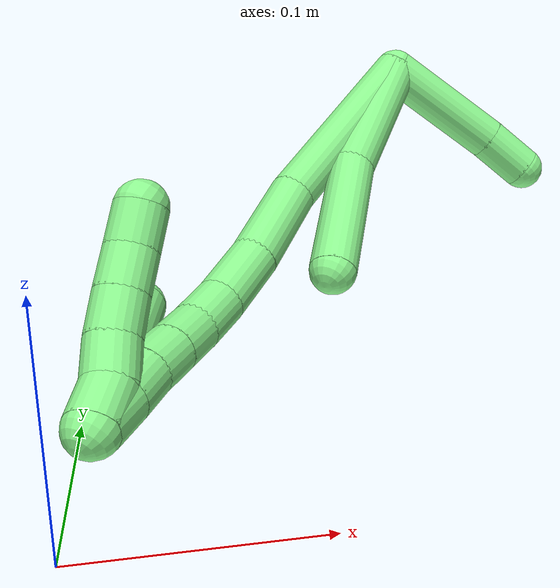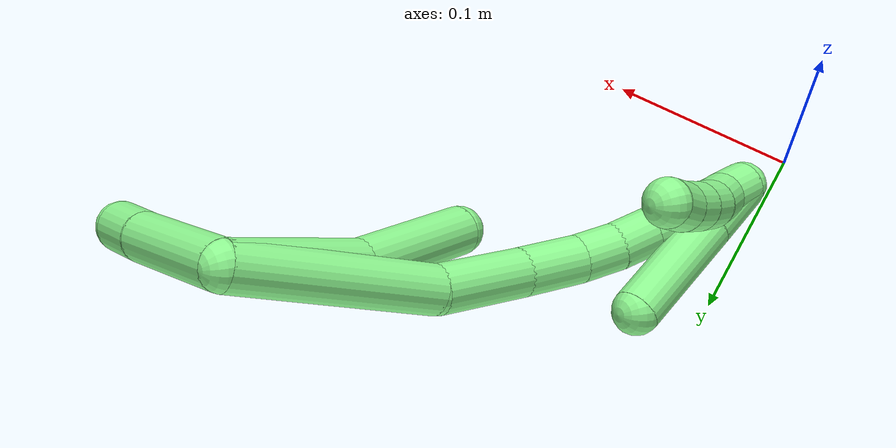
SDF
<sdf version="1.7">
 <world name="default">
  <model name="13">
   <static>0</static>
   <link name="13">
    <collision name="collision-cylinder-e_1_2_8">
     <pose>-0.000254 0.007396 -0.037537 -2.94705 -0.006627 0.067888</pose>
     <geometry><cylinder><radius>0.0125</radius><length>0.076518</length></cylinder></geometry>
     <surface>
      <friction><ode><mu>1.16</mu><mu2>1.16</mu2><slip1>0</slip1><slip2>0</slip2></ode></friction>
      <contact><ode><kp>1e+06</kp><kd>1</kd><max_vel>0</max_vel><min_depth>0.001</min_depth></ode></contact>
     </surface>
    </collision>
    <visual name="visual-cylinder-e_1_2_8">
     <pose>-0.000254 0.007396 -0.037537 -2.94705 -0.006627 0.067888</pose>
     <geometry><cylinder><radius>0.0125</radius><length>0.076518</length></cylinder></geometry>
     <material><ambient>0.564706 0.984314 0.572549 1</ambient></material>
    </visual>
    <collision name="collision-cylinder-e_2_8_6">
     <pose>0.006979 0.017279 -0.110957 -3.0724 0.205181 -2.493</pose>
     <geometry><cylinder><radius>0.0125</radius><length>0.073482</length></cylinder></geometry>
     <surface>
      <friction><ode><mu>1.16</mu><mu2>1.16</mu2><slip1>0</slip1><slip2>0</slip2></ode></friction>
      <contact><ode><kp>1e+06</kp><kd>1</kd><max_vel>0</max_vel><min_depth>0.001</min_depth></ode></contact>
     </surface>
    </collision>
    <visual name="visual-cylinder-e_2_8_6">
     <pose>0.006979 0.017279 -0.110957 -3.0724 0.205181 -2.493</pose>
     <geometry><cylinder><radius>0.0125</radius><length>0.073482</length></cylinder></geometry>
     <material><ambient>0.564706 0.984314 0.572549 1</ambient></material>
    </visual>
    <collision name="collision-cylinder-e_1_2_9">
     <pose>0.031462 0.01659 0.000521 -1.53943 1.08535 -1.05781</pose>
     <geometry><cylinder><radius>0.0125</radius><length>0.071144</length></cylinder></geometry>
     <surface>
      <friction><ode><mu>1.16</mu><mu2>1.16</mu2><slip1>0</slip1><slip2>0</slip2></ode></friction>
      <contact><ode><kp>1e+06</kp><kd>1</kd><max_vel>0</max_vel><min_depth>0.001</min_depth></ode></contact>
     </surface>
    </collision>
    <visual name="visual-cylinder-e_1_2_9">
     <pose>0.031462 0.01659 0.000521 -1.53943 1.08535 -1.05781</pose>
     <geometry><cylinder><radius>0.0125</radius><length>0.071144</length></cylinder></geometry>
     <material><ambient>0.564706 0.984314 0.572549 1</ambient></material>
    </visual>
    <collision name="collision-cylinder-e_2_9_5">
     <pose>0.07562 0.039958 2.2e-05 -1.72001 1.07573 -1.21191</pose>
     <geometry><cylinder><radius>0.0125</radius><length>0.028856</length></cylinder></geometry>
     <surface>
      <friction><ode><mu>1.16</mu><mu2>1.16</mu2><slip1>0</slip1><slip2>0</slip2></ode></friction>
      <contact><ode><kp>1e+06</kp><kd>1</kd><max_vel>0</max_vel><min_depth>0.001</min_depth></ode></contact>
     </surface>
    </collision>
    <visual name="visual-cylinder-e_2_9_5">
     <pose>0.07562 0.039958 2.2e-05 -1.72001 1.07573 -1.21191</pose>
     <geometry><cylinder><radius>0.0125</radius><length>0.028856</length></cylinder></geometry>
     <material><ambient>0.564706 0.984314 0.572549 1</ambient></material>
    </visual>
    <collision name="collision-cylinder-e_1_2_10">
     <pose>-0.012145 0.008829 -0.052631 -2.9754 -0.223764 1.86572</pose>
     <geometry><cylinder><radius>0.0125</radius><length>0.109462</length></cylinder></geometry>
     <surface>
      <friction><ode><mu>1.16</mu><mu2>1.16</mu2><slip1>0</slip1><slip2>0</slip2></ode></friction>
      <contact><ode><kp>1e+06</kp><kd>1</kd><max_vel>0</max_vel><min_depth>0.001</min_depth></ode></contact>
     </surface>
    </collision>
    <visual name="visual-cylinder-e_1_2_10">
     <pose>-0.012145 0.008829 -0.052631 -2.9754 -0.223764 1.86572</pose>
     <geometry><cylinder><radius>0.0125</radius><length>0.109462</length></cylinder></geometry>
     <material><ambient>0.564706 0.984314 0.572549 1</ambient></material>
    </visual>
    <collision name="collision-cylinder-e_2_10_11">
     <pose>-0.024762 0.017499 -0.130881 3.13542 -0.018452 -2.49619</pose>
     <geometry><cylinder><radius>0.0125</radius><length>0.051248</length></cylinder></geometry>
     <surface>
      <friction><ode><mu>1.16</mu><mu2>1.16</mu2><slip1>0</slip1><slip2>0</slip2></ode></friction>
      <contact><ode><kp>1e+06</kp><kd>1</kd><max_vel>0</max_vel><min_depth>0.001</min_depth></ode></contact>
     </surface>
    </collision>
    <visual name="visual-cylinder-e_2_10_11">
     <pose>-0.024762 0.017499 -0.130881 3.13542 -0.018452 -2.49619</pose>
     <geometry><cylinder><radius>0.0125</radius><length>0.051248</length></cylinder></geometry>
     <material><ambient>0.564706 0.984314 0.572549 1</ambient></material>
    </visual>
    <collision name="collision-cylinder-e_3_11_12">
     <pose>-0.026579 0.015617 -0.173611 3.04118 -0.077967 -1.32015</pose>
     <geometry><cylinder><radius>0.0125</radius><length>0.034498</length></cylinder></geometry>
     <surface>
      <friction><ode><mu>1.16</mu><mu2>1.16</mu2><slip1>0</slip1><slip2>0</slip2></ode></friction>
      <contact><ode><kp>1e+06</kp><kd>1</kd><max_vel>0</max_vel><min_depth>0.001</min_depth></ode></contact>
     </surface>
    </collision>
    <visual name="visual-cylinder-e_3_11_12">
     <pose>-0.026579 0.015617 -0.173611 3.04118 -0.077967 -1.32015</pose>
     <geometry><cylinder><radius>0.0125</radius><length>0.034498</length></cylinder></geometry>
     <material><ambient>0.564706 0.984314 0.572549 1</ambient></material>
    </visual>
    <collision name="collision-cylinder-e_4_12_13">
     <pose>-0.029022 0.011187 -0.20194 2.90487 -0.095017 -0.760695</pose>
     <geometry><cylinder><radius>0.0125</radius><length>0.023188</length></cylinder></geometry>
     <surface>
      <friction><ode><mu>1.16</mu><mu2>1.16</mu2><slip1>0</slip1><slip2>0</slip2></ode></friction>
      <contact><ode><kp>1e+06</kp><kd>1</kd><max_vel>0</max_vel><min_depth>0.001</min_depth></ode></contact>
     </surface>
    </collision>
    <visual name="visual-cylinder-e_4_12_13">
     <pose>-0.029022 0.011187 -0.20194 2.90487 -0.095017 -0.760695</pose>
     <geometry><cylinder><radius>0.0125</radius><length>0.023188</length></cylinder></geometry>
     <material><ambient>0.564706 0.984314 0.572549 1</ambient></material>
    </visual>
    <collision name="collision-cylinder-e_5_13_14">
     <pose>-0.030856 0.004707 -0.222853 2.7704 -0.0704 -0.370797</pose>
     <geometry><cylinder><radius>0.0125</radius><length>0.020853</length></cylinder></geometry>
     <surface>
      <friction><ode><mu>1.16</mu><mu2>1.16</mu2><slip1>0</slip1><slip2>0</slip2></ode></friction>
      <contact><ode><kp>1e+06</kp><kd>1</kd><max_vel>0</max_vel><min_depth>0.001</min_depth></ode></contact>
     </surface>
    </collision>
    <visual name="visual-cylinder-e_5_13_14">
     <pose>-0.030856 0.004707 -0.222853 2.7704 -0.0704 -0.370797</pose>
     <geometry><cylinder><radius>0.0125</radius><length>0.020853</length></cylinder></geometry>
     <material><ambient>0.564706 0.984314 0.572549 1</ambient></material>
    </visual>
    <collision name="collision-cylinder-e_6_14_15">
     <pose>-0.03239 -0.002674 -0.241901 2.77347 -0.079679 -0.421848</pose>
     <geometry><cylinder><radius>0.0125</radius><length>0.020119</length></cylinder></geometry>
     <surface>
      <friction><ode><mu>1.16</mu><mu2>1.16</mu2><slip1>0</slip1><slip2>0</slip2></ode></friction>
      <contact><ode><kp>1e+06</kp><kd>1</kd><max_vel>0</max_vel><min_depth>0.001</min_depth></ode></contact>
     </surface>
    </collision>
    <visual name="visual-cylinder-e_6_14_15">
     <pose>-0.03239 -0.002674 -0.241901 2.77347 -0.079679 -0.421848</pose>
     <geometry><cylinder><radius>0.0125</radius><length>0.020119</length></cylinder></geometry>
     <material><ambient>0.564706 0.984314 0.572549 1</ambient></material>
    </visual>
    <collision name="collision-cylinder-e_7_15_16">
     <pose>-0.033244 -0.00968 -0.260678 2.79553 -0.005324 -0.030461</pose>
     <geometry><cylinder><radius>0.0125</radius><length>0.020031</length></cylinder></geometry>
     <surface>
      <friction><ode><mu>1.16</mu><mu2>1.16</mu2><slip1>0</slip1><slip2>0</slip2></ode></friction>
      <contact><ode><kp>1e+06</kp><kd>1</kd><max_vel>0</max_vel><min_depth>0.001</min_depth></ode></contact>
     </surface>
    </collision>
    <visual name="visual-cylinder-e_7_15_16">
     <pose>-0.033244 -0.00968 -0.260678 2.79553 -0.005324 -0.030461</pose>
     <geometry><cylinder><radius>0.0125</radius><length>0.020031</length></cylinder></geometry>
     <material><ambient>0.564706 0.984314 0.572549 1</ambient></material>
    </visual>
    <collision name="collision-cylinder-e_8_16_1">
     <pose>-0.033529 -0.016911 -0.279657 2.76006 -0.022536 -0.116568</pose>
     <geometry><cylinder><radius>0.0125</radius><length>0.020602</length></cylinder></geometry>
     <surface>
      <friction><ode><mu>1.16</mu><mu2>1.16</mu2><slip1>0</slip1><slip2>0</slip2></ode></friction>
      <contact><ode><kp>1e+06</kp><kd>1</kd><max_vel>0</max_vel><min_depth>0.001</min_depth></ode></contact>
     </surface>
    </collision>
    <visual name="visual-cylinder-e_8_16_1">
     <pose>-0.033529 -0.016911 -0.279657 2.76006 -0.022536 -0.116568</pose>
     <geometry><cylinder><radius>0.0125</radius><length>0.020602</length></cylinder></geometry>
     <material><ambient>0.564706 0.984314 0.572549 1</ambient></material>
    </visual>
    <collision name="collision-cylinder-e_1_1_17">
     <pose>-0.039272 -0.013737 -0.274212 -0.437043 -0.321265 0.071931</pose>
     <geometry><cylinder><radius>0.0125</radius><length>0.034904</length></cylinder></geometry>
     <surface>
      <friction><ode><mu>1.16</mu><mu2>1.16</mu2><slip1>0</slip1><slip2>0</slip2></ode></friction>
      <contact><ode><kp>1e+06</kp><kd>1</kd><max_vel>0</max_vel><min_depth>0.001</min_depth></ode></contact>
     </surface>
    </collision>
    <visual name="visual-cylinder-e_1_1_17">
     <pose>-0.039272 -0.013737 -0.274212 -0.437043 -0.321265 0.071931</pose>
     <geometry><cylinder><radius>0.0125</radius><length>0.034904</length></cylinder></geometry>
     <material><ambient>0.564706 0.984314 0.572549 1</ambient></material>
    </visual>
    <collision name="collision-cylinder-e_2_17_4">
     <pose>-0.054736 0.006782 -0.23132 -0.451112 -0.310793 0.071863</pose>
     <geometry><cylinder><radius>0.0125</radius><length>0.065096</length></cylinder></geometry>
     <surface>
      <friction><ode><mu>1.16</mu><mu2>1.16</mu2><slip1>0</slip1><slip2>0</slip2></ode></friction>
      <contact><ode><kp>1e+06</kp><kd>1</kd><max_vel>0</max_vel><min_depth>0.001</min_depth></ode></contact>
     </surface>
    </collision>
    <visual name="visual-cylinder-e_2_17_4">
     <pose>-0.054736 0.006782 -0.23132 -0.451112 -0.310793 0.071863</pose>
     <geometry><cylinder><radius>0.0125</radius><length>0.065096</length></cylinder></geometry>
     <material><ambient>0.564706 0.984314 0.572549 1</ambient></material>
    </visual>
    <collision name="collision-cylinder-e_1_1_18">
     <pose>-0.03571 -0.020289 -0.279417 -0.046534 -0.196135 0.004579</pose>
     <geometry><cylinder><radius>0.0125</radius><length>0.02</length></cylinder></geometry>
     <surface>
      <friction><ode><mu>1.16</mu><mu2>1.16</mu2><slip1>0</slip1><slip2>0</slip2></ode></friction>
      <contact><ode><kp>1e+06</kp><kd>1</kd><max_vel>0</max_vel><min_depth>0.001</min_depth></ode></contact>
     </surface>
    </collision>
    <visual name="visual-cylinder-e_1_1_18">
     <pose>-0.03571 -0.020289 -0.279417 -0.046534 -0.196135 0.004579</pose>
     <geometry><cylinder><radius>0.0125</radius><length>0.02</length></cylinder></geometry>
     <material><ambient>0.564706 0.984314 0.572549 1</ambient></material>
    </visual>
    <collision name="collision-cylinder-e_2_18_19">
     <pose>-0.041712 -0.021839 -0.2607 0.221238 -0.417284 -0.047025</pose>
     <geometry><cylinder><radius>0.0125</radius><length>0.02</length></cylinder></geometry>
     <surface>
      <friction><ode><mu>1.16</mu><mu2>1.16</mu2><slip1>0</slip1><slip2>0</slip2></ode></friction>
      <contact><ode><kp>1e+06</kp><kd>1</kd><max_vel>0</max_vel><min_depth>0.001</min_depth></ode></contact>
     </surface>
    </collision>
    <visual name="visual-cylinder-e_2_18_19">
     <pose>-0.041712 -0.021839 -0.2607 0.221238 -0.417284 -0.047025</pose>
     <geometry><cylinder><radius>0.0125</radius><length>0.02</length></cylinder></geometry>
     <material><ambient>0.564706 0.984314 0.572549 1</ambient></material>
    </visual>
    <collision name="collision-cylinder-e_3_19_20">
     <pose>-0.048477 -0.026828 -0.24263 0.31509 -0.27473 -0.043914</pose>
     <geometry><cylinder><radius>0.0125</radius><length>0.02</length></cylinder></geometry>
     <surface>
      <friction><ode><mu>1.16</mu><mu2>1.16</mu2><slip1>0</slip1><slip2>0</slip2></ode></friction>
      <contact><ode><kp>1e+06</kp><kd>1</kd><max_vel>0</max_vel><min_depth>0.001</min_depth></ode></contact>
     </surface>
    </collision>
    <visual name="visual-cylinder-e_3_19_20">
     <pose>-0.048477 -0.026828 -0.24263 0.31509 -0.27473 -0.043914</pose>
     <geometry><cylinder><radius>0.0125</radius><length>0.02</length></cylinder></geometry>
     <material><ambient>0.564706 0.984314 0.572549 1</ambient></material>
    </visual>
    <collision name="collision-cylinder-e_4_20_21">
     <pose>-0.053464 -0.033045 -0.224293 0.33857 -0.229373 -0.039372</pose>
     <geometry><cylinder><radius>0.0125</radius><length>0.02</length></cylinder></geometry>
     <surface>
      <friction><ode><mu>1.16</mu><mu2>1.16</mu2><slip1>0</slip1><slip2>0</slip2></ode></friction>
      <contact><ode><kp>1e+06</kp><kd>1</kd><max_vel>0</max_vel><min_depth>0.001</min_depth></ode></contact>
     </surface>
    </collision>
    <visual name="visual-cylinder-e_4_20_21">
     <pose>-0.053464 -0.033045 -0.224293 0.33857 -0.229373 -0.039372</pose>
     <geometry><cylinder><radius>0.0125</radius><length>0.02</length></cylinder></geometry>
     <material><ambient>0.564706 0.984314 0.572549 1</ambient></material>
    </visual>
    <collision name="collision-cylinder-e_5_21_3">
     <pose>-0.057674 -0.040463 -0.206234 0.440461 -0.19483 -0.043746</pose>
     <geometry><cylinder><radius>0.0125</radius><length>0.02</length></cylinder></geometry>
     <surface>
      <friction><ode><mu>1.16</mu><mu2>1.16</mu2><slip1>0</slip1><slip2>0</slip2></ode></friction>
      <contact><ode><kp>1e+06</kp><kd>1</kd><max_vel>0</max_vel><min_depth>0.001</min_depth></ode></contact>
     </surface>
    </collision>
    <visual name="visual-cylinder-e_5_21_3">
     <pose>-0.057674 -0.040463 -0.206234 0.440461 -0.19483 -0.043746</pose>
     <geometry><cylinder><radius>0.0125</radius><length>0.02</length></cylinder></geometry>
     <material><ambient>0.564706 0.984314 0.572549 1</ambient></material>
    </visual>
    <collision name="collision-sphere-3">
     <pose>-0.059609 -0.044646 -0.197359 0 -0 0</pose>
     <geometry><sphere><radius>0.0125</radius></sphere></geometry>
     <surface>
      <friction><ode><mu>1.16</mu><mu2>1.16</mu2><slip1>0</slip1><slip2>0</slip2></ode></friction>
      <contact><ode><kp>1e+06</kp><kd>1</kd><max_vel>0</max_vel><min_depth>0.001</min_depth></ode></contact>
     </surface>
    </collision>
    <visual name="visual-sphere-3">
     <pose>-0.059609 -0.044646 -0.197359 0 -0 0</pose>
     <geometry><sphere><radius>0.0125</radius></sphere></geometry>
     <material><ambient>0.564706 0.984314 0.572549 1</ambient></material>
    </visual>
    <collision name="collision-sphere-21">
     <pose>-0.055738 -0.03628 -0.215108 0 -0 0</pose>
     <geometry><sphere><radius>0.0125</radius></sphere></geometry>
     <surface>
      <friction><ode><mu>1.16</mu><mu2>1.16</mu2><slip1>0</slip1><slip2>0</slip2></ode></friction>
      <contact><ode><kp>1e+06</kp><kd>1</kd><max_vel>0</max_vel><min_depth>0.001</min_depth></ode></contact>
     </surface>
    </collision>
    <visual name="visual-sphere-21">
     <pose>-0.055738 -0.03628 -0.215108 0 -0 0</pose>
     <geometry><sphere><radius>0.0125</radius></sphere></geometry>
     <material><ambient>0.564706 0.984314 0.572549 1</ambient></material>
    </visual>
    <collision name="collision-sphere-20">
     <pose>-0.05119 -0.029811 -0.233479 0 -0 0</pose>
     <geometry><sphere><radius>0.0125</radius></sphere></geometry>
     <surface>
      <friction><ode><mu>1.16</mu><mu2>1.16</mu2><slip1>0</slip1><slip2>0</slip2></ode></friction>
      <contact><ode><kp>1e+06</kp><kd>1</kd><max_vel>0</max_vel><min_depth>0.001</min_depth></ode></contact>
     </surface>
    </collision>
    <visual name="visual-sphere-20">
     <pose>-0.05119 -0.029811 -0.233479 0 -0 0</pose>
     <geometry><sphere><radius>0.0125</radius></sphere></geometry>
     <material><ambient>0.564706 0.984314 0.572549 1</ambient></material>
    </visual>
    <collision name="collision-sphere-19">
     <pose>-0.045764 -0.023845 -0.251781 0 -0 0</pose>
     <geometry><sphere><radius>0.0125</radius></sphere></geometry>
     <surface>
      <friction><ode><mu>1.16</mu><mu2>1.16</mu2><slip1>0</slip1><slip2>0</slip2></ode></friction>
      <contact><ode><kp>1e+06</kp><kd>1</kd><max_vel>0</max_vel><min_depth>0.001</min_depth></ode></contact>
     </surface>
    </collision>
    <visual name="visual-sphere-19">
     <pose>-0.045764 -0.023845 -0.251781 0 -0 0</pose>
     <geometry><sphere><radius>0.0125</radius></sphere></geometry>
     <material><ambient>0.564706 0.984314 0.572549 1</ambient></material>
    </visual>
    <collision name="collision-sphere-10">
     <pose>-0.02429 0.017657 -0.105262 0 -0 0</pose>
     <geometry><sphere><radius>0.0125</radius></sphere></geometry>
     <surface>
      <friction><ode><mu>1.16</mu><mu2>1.16</mu2><slip1>0</slip1><slip2>0</slip2></ode></friction>
      <contact><ode><kp>1e+06</kp><kd>1</kd><max_vel>0</max_vel><min_depth>0.001</min_depth></ode></contact>
     </surface>
    </collision>
    <visual name="visual-sphere-10">
     <pose>-0.02429 0.017657 -0.105262 0 -0 0</pose>
     <geometry><sphere><radius>0.0125</radius></sphere></geometry>
     <material><ambient>0.564706 0.984314 0.572549 1</ambient></material>
    </visual>
    <collision name="collision-sphere-5">
     <pose>0.088316 0.046737 -0.000997 0 -0 0</pose>
     <geometry><sphere><radius>0.0125</radius></sphere></geometry>
     <surface>
      <friction><ode><mu>1.16</mu><mu2>1.16</mu2><slip1>0</slip1><slip2>0</slip2></ode></friction>
      <contact><ode><kp>1e+06</kp><kd>1</kd><max_vel>0</max_vel><min_depth>0.001</min_depth></ode></contact>
     </surface>
    </collision>
    <visual name="visual-sphere-5">
     <pose>0.088316 0.046737 -0.000997 0 -0 0</pose>
     <geometry><sphere><radius>0.0125</radius></sphere></geometry>
     <material><ambient>0.564706 0.984314 0.572549 1</ambient></material>
    </visual>
    <collision name="collision-sphere-6">
     <pose>0.014464 0.019766 -0.146841 0 -0 0</pose>
     <geometry><sphere><radius>0.0125</radius></sphere></geometry>
     <surface>
      <friction><ode><mu>1.16</mu><mu2>1.16</mu2><slip1>0</slip1><slip2>0</slip2></ode></friction>
      <contact><ode><kp>1e+06</kp><kd>1</kd><max_vel>0</max_vel><min_depth>0.001</min_depth></ode></contact>
     </surface>
    </collision>
    <visual name="visual-sphere-6">
     <pose>0.014464 0.019766 -0.146841 0 -0 0</pose>
     <geometry><sphere><radius>0.0125</radius></sphere></geometry>
     <material><ambient>0.564706 0.984314 0.572549 1</ambient></material>
    </visual>
    <collision name="collision-sphere-9">
     <pose>0.062925 0.03318 0.001041 0 -0 0</pose>
     <geometry><sphere><radius>0.0125</radius></sphere></geometry>
     <surface>
      <friction><ode><mu>1.16</mu><mu2>1.16</mu2><slip1>0</slip1><slip2>0</slip2></ode></friction>
      <contact><ode><kp>1e+06</kp><kd>1</kd><max_vel>0</max_vel><min_depth>0.001</min_depth></ode></contact>
     </surface>
    </collision>
    <visual name="visual-sphere-9">
     <pose>0.062925 0.03318 0.001041 0 -0 0</pose>
     <geometry><sphere><radius>0.0125</radius></sphere></geometry>
     <material><ambient>0.564706 0.984314 0.572549 1</ambient></material>
    </visual>
    <collision name="collision-sphere-2">
     <geometry><sphere><radius>0.0125</radius></sphere></geometry>
     <surface>
      <friction><ode><mu>1.16</mu><mu2>1.16</mu2><slip1>0</slip1><slip2>0</slip2></ode></friction>
      <contact><ode><kp>1e+06</kp><kd>1</kd><max_vel>0</max_vel><min_depth>0.001</min_depth></ode></contact>
     </surface>
    </collision>
    <visual name="visual-sphere-2">
     <geometry><sphere><radius>0.0125</radius></sphere></geometry>
     <material><ambient>0.564706 0.984314 0.572549 1</ambient></material>
    </visual>
    <collision name="collision-sphere-8">
     <pose>-0.000507 0.014792 -0.075073 0 -0 0</pose>
     <geometry><sphere><radius>0.0125</radius></sphere></geometry>
     <surface>
      <friction><ode><mu>1.16</mu><mu2>1.16</mu2><slip1>0</slip1><slip2>0</slip2></ode></friction>
      <contact><ode><kp>1e+06</kp><kd>1</kd><max_vel>0</max_vel><min_depth>0.001</min_depth></ode></contact>
     </surface>
    </collision>
    <visual name="visual-sphere-8">
     <pose>-0.000507 0.014792 -0.075073 0 -0 0</pose>
     <geometry><sphere><radius>0.0125</radius></sphere></geometry>
     <material><ambient>0.564706 0.984314 0.572549 1</ambient></material>
    </visual>
    <collision name="collision-sphere-11">
     <pose>-0.025235 0.017341 -0.1565 0 -0 0</pose>
     <geometry><sphere><radius>0.0125</radius></sphere></geometry>
     <surface>
      <friction><ode><mu>1.16</mu><mu2>1.16</mu2><slip1>0</slip1><slip2>0</slip2></ode></friction>
      <contact><ode><kp>1e+06</kp><kd>1</kd><max_vel>0</max_vel><min_depth>0.001</min_depth></ode></contact>
     </surface>
    </collision>
    <visual name="visual-sphere-11">
     <pose>-0.025235 0.017341 -0.1565 0 -0 0</pose>
     <geometry><sphere><radius>0.0125</radius></sphere></geometry>
     <material><ambient>0.564706 0.984314 0.572549 1</ambient></material>
    </visual>
    <collision name="collision-sphere-12">
     <pose>-0.027922 0.013893 -0.190721 0 -0 0</pose>
     <geometry><sphere><radius>0.0125</radius></sphere></geometry>
     <surface>
      <friction><ode><mu>1.16</mu><mu2>1.16</mu2><slip1>0</slip1><slip2>0</slip2></ode></friction>
      <contact><ode><kp>1e+06</kp><kd>1</kd><max_vel>0</max_vel><min_depth>0.001</min_depth></ode></contact>
     </surface>
    </collision>
    <visual name="visual-sphere-12">
     <pose>-0.027922 0.013893 -0.190721 0 -0 0</pose>
     <geometry><sphere><radius>0.0125</radius></sphere></geometry>
     <material><ambient>0.564706 0.984314 0.572549 1</ambient></material>
    </visual>
    <collision name="collision-sphere-13">
     <pose>-0.030122 0.00848 -0.21316 0 -0 0</pose>
     <geometry><sphere><radius>0.0125</radius></sphere></geometry>
     <surface>
      <friction><ode><mu>1.16</mu><mu2>1.16</mu2><slip1>0</slip1><slip2>0</slip2></ode></friction>
      <contact><ode><kp>1e+06</kp><kd>1</kd><max_vel>0</max_vel><min_depth>0.001</min_depth></ode></contact>
     </surface>
    </collision>
    <visual name="visual-sphere-13">
     <pose>-0.030122 0.00848 -0.21316 0 -0 0</pose>
     <geometry><sphere><radius>0.0125</radius></sphere></geometry>
     <material><ambient>0.564706 0.984314 0.572549 1</ambient></material>
    </visual>
    <collision name="collision-sphere-14">
     <pose>-0.031589 0.000935 -0.232545 0 -0 0</pose>
     <geometry><sphere><radius>0.0125</radius></sphere></geometry>
     <surface>
      <friction><ode><mu>1.16</mu><mu2>1.16</mu2><slip1>0</slip1><slip2>0</slip2></ode></friction>
      <contact><ode><kp>1e+06</kp><kd>1</kd><max_vel>0</max_vel><min_depth>0.001</min_depth></ode></contact>
     </surface>
    </collision>
    <visual name="visual-sphere-14">
     <pose>-0.031589 0.000935 -0.232545 0 -0 0</pose>
     <geometry><sphere><radius>0.0125</radius></sphere></geometry>
     <material><ambient>0.564706 0.984314 0.572549 1</ambient></material>
    </visual>
    <collision name="collision-sphere-15">
     <pose>-0.03319 -0.006283 -0.251256 0 -0 0</pose>
     <geometry><sphere><radius>0.0125</radius></sphere></geometry>
     <surface>
      <friction><ode><mu>1.16</mu><mu2>1.16</mu2><slip1>0</slip1><slip2>0</slip2></ode></friction>
      <contact><ode><kp>1e+06</kp><kd>1</kd><max_vel>0</max_vel><min_depth>0.001</min_depth></ode></contact>
     </surface>
    </collision>
    <visual name="visual-sphere-15">
     <pose>-0.03319 -0.006283 -0.251256 0 -0 0</pose>
     <geometry><sphere><radius>0.0125</radius></sphere></geometry>
     <material><ambient>0.564706 0.984314 0.572549 1</ambient></material>
    </visual>
    <collision name="collision-sphere-16">
     <pose>-0.033297 -0.013077 -0.270099 0 -0 0</pose>
     <geometry><sphere><radius>0.0125</radius></sphere></geometry>
     <surface>
      <friction><ode><mu>1.16</mu><mu2>1.16</mu2><slip1>0</slip1><slip2>0</slip2></ode></friction>
      <contact><ode><kp>1e+06</kp><kd>1</kd><max_vel>0</max_vel><min_depth>0.001</min_depth></ode></contact>
     </surface>
    </collision>
    <visual name="visual-sphere-16">
     <pose>-0.033297 -0.013077 -0.270099 0 -0 0</pose>
     <geometry><sphere><radius>0.0125</radius></sphere></geometry>
     <material><ambient>0.564706 0.984314 0.572549 1</ambient></material>
    </visual>
    <collision name="collision-sphere-1">
     <pose>-0.033761 -0.020746 -0.289215 0 -0 0</pose>
     <geometry><sphere><radius>0.0125</radius></sphere></geometry>
     <surface>
      <friction><ode><mu>1.16</mu><mu2>1.16</mu2><slip1>0</slip1><slip2>0</slip2></ode></friction>
      <contact><ode><kp>1e+06</kp><kd>1</kd><max_vel>0</max_vel><min_depth>0.001</min_depth></ode></contact>
     </surface>
    </collision>
    <visual name="visual-sphere-1">
     <pose>-0.033761 -0.020746 -0.289215 0 -0 0</pose>
     <geometry><sphere><radius>0.0125</radius></sphere></geometry>
     <material><ambient>0.564706 0.984314 0.572549 1</ambient></material>
    </visual>
    <collision name="collision-sphere-18">
     <pose>-0.037659 -0.019833 -0.269619 0 -0 0</pose>
     <geometry><sphere><radius>0.0125</radius></sphere></geometry>
     <surface>
      <friction><ode><mu>1.16</mu><mu2>1.16</mu2><slip1>0</slip1><slip2>0</slip2></ode></friction>
      <contact><ode><kp>1e+06</kp><kd>1</kd><max_vel>0</max_vel><min_depth>0.001</min_depth></ode></contact>
     </surface>
    </collision>
    <visual name="visual-sphere-18">
     <pose>-0.037659 -0.019833 -0.269619 0 -0 0</pose>
     <geometry><sphere><radius>0.0125</radius></sphere></geometry>
     <material><ambient>0.564706 0.984314 0.572549 1</ambient></material>
    </visual>
    <collision name="collision-sphere-17">
     <pose>-0.044783 -0.006728 -0.259209 0 -0 0</pose>
     <geometry><sphere><radius>0.0125</radius></sphere></geometry>
     <surface>
      <friction><ode><mu>1.16</mu><mu2>1.16</mu2><slip1>0</slip1><slip2>0</slip2></ode></friction>
      <contact><ode><kp>1e+06</kp><kd>1</kd><max_vel>0</max_vel><min_depth>0.001</min_depth></ode></contact>
     </surface>
    </collision>
    <visual name="visual-sphere-17">
     <pose>-0.044783 -0.006728 -0.259209 0 -0 0</pose>
     <geometry><sphere><radius>0.0125</radius></sphere></geometry>
     <material><ambient>0.564706 0.984314 0.572549 1</ambient></material>
    </visual>
    <collision name="collision-sphere-4">
     <pose>-0.06469 0.020292 -0.203432 0 -0 0</pose>
     <geometry><sphere><radius>0.0125</radius></sphere></geometry>
     <surface>
      <friction><ode><mu>1.16</mu><mu2>1.16</mu2><slip1>0</slip1><slip2>0</slip2></ode></friction>
      <contact><ode><kp>1e+06</kp><kd>1</kd><max_vel>0</max_vel><min_depth>0.001</min_depth></ode></contact>
     </surface>
    </collision>
    <visual name="visual-sphere-4">
     <pose>-0.06469 0.020292 -0.203432 0 -0 0</pose>
     <geometry><sphere><radius>0.0125</radius></sphere></geometry>
     <material><ambient>0.564706 0.984314 0.572549 1</ambient></material>
    </visual>
    <inertial>
     <pose>-0.015468 0.004593 -0.138026 0 -0 0</pose>
     <mass>0.75</mass>
     <inertia>
      <ixx>8.2e-05</ixx>
      <ixy>0</ixy>
      <ixz>0</ixz>
      <iyy>0.000156</iyy>
      <iyz>0</iyz>
      <izz>-7.5e-05</izz>
     </inertia>
    </inertial>
   </link>
   <pose>0.181352 0.253497 0.137239 -1.07956 0.221818 -0.457375</pose>
  </model>
 </world>
</sdf>
